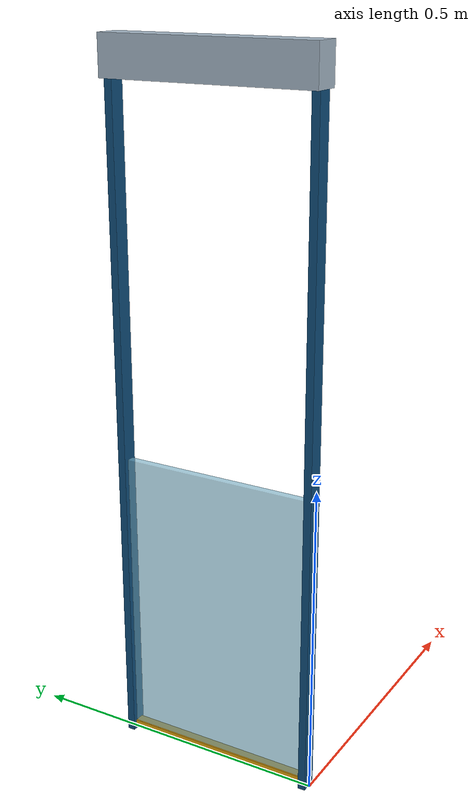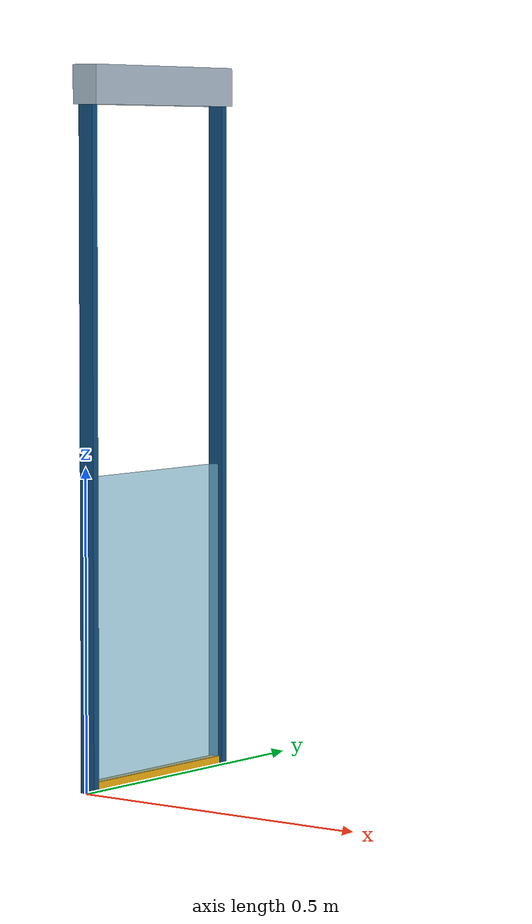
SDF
<?xml version='1.0' encoding='utf-8'?>
<sdf version="1.9">
  <model name="room_1_entry_door">
    <static>false</static>
    <self_collide>true</self_collide>
    <link name="frame">
      <pose>0 0 0 0 0 0</pose>
      <inertial>
        <mass>2</mass>
        <inertia>
          <ixx>0.003333333333333334</ixx>
          <iyy>0.003333333333333334</iyy>
          <izz>0.003333333333333334</izz>
          <ixy>0</ixy>
          <ixz>0</ixz>
          <iyz>0</iyz>
        </inertia>
      </inertial>
      <visual name="guide_0.008">
        <pose>0.0 0.008 0.525 0.0 0.0 0.0</pose>
        <geometry>
          <box>
            <size>0.026 0.012 1.05</size>
          </box>
        </geometry>
        <material>
          <ambient>0.06 0.30 0.48 1</ambient>
          <diffuse>0.06 0.30 0.48 1</diffuse>
        </material>
      </visual>
      <collision name="guide_0.008_collision">
        <pose>0.0 0.008 0.525 0.0 0.0 0.0</pose>
        <geometry>
          <box>
            <size>0.026 0.012 1.05</size>
          </box>
        </geometry>
        <surface>
          <friction>
            <ode>
              <mu>0.9</mu>
              <mu2>0.9</mu2>
            </ode>
          </friction>
        </surface>
      </collision>
      <visual name="guide_0.302">
        <pose>0.0 0.3268 0.525 0.0 0.0 0.0</pose>
        <geometry>
          <box>
            <size>0.026 0.012 1.05</size>
          </box>
        </geometry>
        <material>
          <ambient>0.06 0.30 0.48 1</ambient>
          <diffuse>0.06 0.30 0.48 1</diffuse>
        </material>
      </visual>
      <collision name="guide_0.302_collision">
        <pose>0.0 0.3268 0.525 0.0 0.0 0.0</pose>
        <geometry>
          <box>
            <size>0.026 0.012 1.05</size>
          </box>
        </geometry>
        <surface>
          <friction>
            <ode>
              <mu>0.9</mu>
              <mu2>0.9</mu2>
            </ode>
          </friction>
        </surface>
      </collision>
      <visual name="drive_housing">
        <pose>0.0 0.1674 1.08 0.0 0.0 0.0</pose>
        <geometry>
          <box>
            <size>.045 0.3348 .06</size>
          </box>
        </geometry>
        <material>
          <ambient>0.65 0.72 0.78 1</ambient>
          <diffuse>0.65 0.72 0.78 1</diffuse>
        </material>
      </visual>
      <collision name="drive_housing_collision">
        <pose>0.0 0.1674 1.08 0.0 0.0 0.0</pose>
        <geometry>
          <box>
            <size>.045 0.3348 .06</size>
          </box>
        </geometry>
        <surface>
          <friction>
            <ode>
              <mu>0.9</mu>
              <mu2>0.9</mu2>
            </ode>
          </friction>
        </surface>
      </collision>
    </link>
    <joint name="door_mount" type="fixed">
      <parent>world</parent>
      <child>frame</child>
    </joint>
    <link name="panel">
      <pose>0.0 0.1674 0.245 0.0 0.0 0.0</pose>
      <inertial>
        <mass>0.4</mass>
        <inertia>
          <ixx>0.010256133333333334</ixx>
          <iyy>0.007684800000000001</iyy>
          <izz>0.002580933333333334</izz>
          <ixy>0</ixy>
          <ixz>0</ixz>
          <iyz>0</iyz>
        </inertia>
      </inertial>
      <visual name="sliding_panel">
        <pose>0 0 0 0 0 0</pose>
        <geometry>
          <box>
            <size>0.012 0.3048 0.48</size>
          </box>
        </geometry>
        <material>
          <ambient>0.5 0.75 0.85 1</ambient>
          <diffuse>0.5 0.75 0.85 1</diffuse>
        </material>
        <transparency>0.35</transparency>
      </visual>
      <collision name="sliding_panel_collision">
        <pose>0 0 0 0 0 0</pose>
        <geometry>
          <box>
            <size>0.012 0.3048 0.48</size>
          </box>
        </geometry>
        <surface>
          <friction>
            <ode>
              <mu>0.9</mu>
              <mu2>0.9</mu2>
            </ode>
          </friction>
        </surface>
      </collision>
      <visual name="bottom_edge">
        <pose>0 0 -0.234 0 0 0</pose>
        <geometry>
          <box>
            <size>0.016 0.3048 0.012</size>
          </box>
        </geometry>
        <material>
          <ambient>0.9 0.65 0.05 1</ambient>
          <diffuse>0.9 0.65 0.05 1</diffuse>
        </material>
      </visual>
      <collision name="bottom_edge_collision">
        <pose>0 0 -0.234 0 0 0</pose>
        <geometry>
          <box>
            <size>0.016 0.3048 0.012</size>
          </box>
        </geometry>
        <surface>
          <friction>
            <ode>
              <mu>0.9</mu>
              <mu2>0.9</mu2>
            </ode>
          </friction>
        </surface>
      </collision>
    </link>
    <joint name="room_1_entry_z" type="prismatic">
      <parent>frame</parent>
      <child>panel</child>
      <axis>
        <xyz>0 0 1</xyz>
        <limit>
          <lower>-0.004</lower>
          <upper>0.535</upper>
          <effort>100</effort>
          <velocity>0.20</velocity>
        </limit>
      </axis>
    </joint>
    <plugin filename="gz-sim-joint-position-controller-system" name="gz::sim::systems::JointPositionController">
      <joint_name>room_1_entry_z</joint_name>
      <topic>/actuators/room_1_entry_z</topic>
      <use_velocity_commands>false</use_velocity_commands>
      <cmd_max>20.0</cmd_max>
      <p_gain>600.0</p_gain>
      <i_gain>0.0</i_gain>
      <d_gain>30.0</d_gain>
      <cmd_min>-20.0</cmd_min>
      <cmd_offset>3.9240000000000004</cmd_offset>
    </plugin>
    <plugin filename="gz-sim-joint-state-publisher-system" name="gz::sim::systems::JointStatePublisher">
      <topic>/doors/room_1/entry/joint_states</topic>
    </plugin>
  </model>
</sdf>
